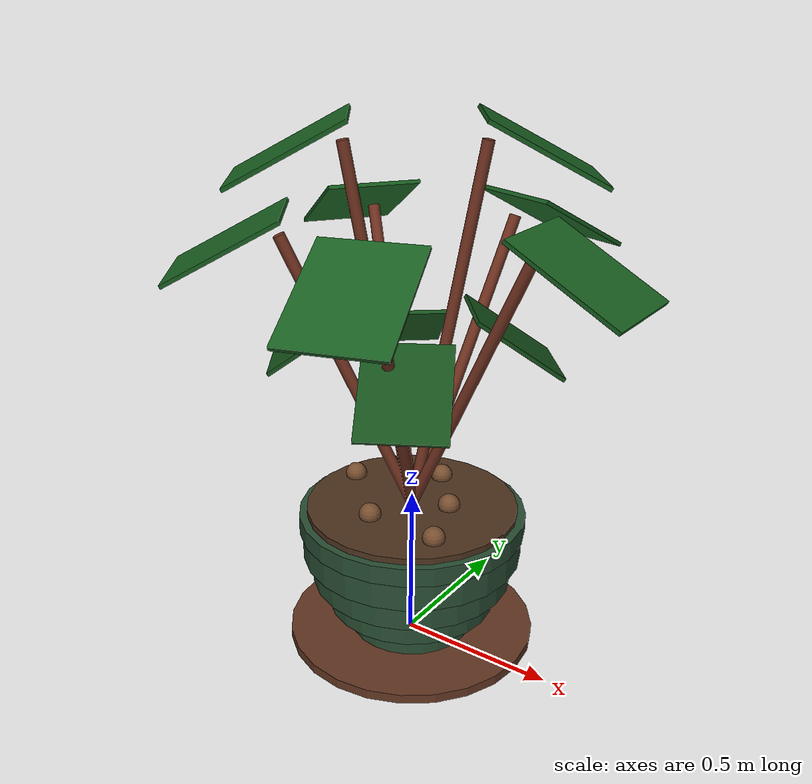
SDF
<?xml version="1.0" ?>
<sdf version="1.9">
  <model name="lobby_planter">
    <static>true</static>
    <link name="link">

      <collision name="pot_collision">
        <pose>0 0 0.24 0 0 0</pose>
        <geometry><cylinder><radius>0.36</radius><length>0.48</length></cylinder></geometry>
      </collision>
      <collision name="crown_collision">
        <pose>0 0 1.15 0 0 0</pose>
        <geometry><cylinder><radius>0.45</radius><length>0.70</length></cylinder></geometry>
      </collision>

      <visual name="saucer">
        <pose>0.000 0.000 0.015 0.000 0.000 0.000</pose>
        <geometry><cylinder><radius>0.4</radius><length>0.030</length></cylinder></geometry>
        <material><ambient>0.3 0.16 0.1 1</ambient><diffuse>0.38 0.21 0.13 1</diffuse></material>
      </visual>
      <visual name="bowl_0">
        <pose>0.000 0.000 0.075 0.000 0.000 0.000</pose>
        <geometry><cylinder><radius>0.2</radius><length>0.090</length></cylinder></geometry>
        <material><ambient>0.1 0.2 0.14 1</ambient><diffuse>0.16 0.3 0.2 1</diffuse></material>
      </visual>
      <visual name="bowl_1">
        <pose>0.000 0.000 0.165 0.000 0.000 0.000</pose>
        <geometry><cylinder><radius>0.27</radius><length>0.090</length></cylinder></geometry>
        <material><ambient>0.1 0.2 0.14 1</ambient><diffuse>0.16 0.3 0.2 1</diffuse></material>
      </visual>
      <visual name="bowl_2">
        <pose>0.000 0.000 0.255 0.000 0.000 0.000</pose>
        <geometry><cylinder><radius>0.32</radius><length>0.090</length></cylinder></geometry>
        <material><ambient>0.1 0.2 0.14 1</ambient><diffuse>0.16 0.3 0.2 1</diffuse></material>
      </visual>
      <visual name="bowl_3">
        <pose>0.000 0.000 0.345 0.000 0.000 0.000</pose>
        <geometry><cylinder><radius>0.35</radius><length>0.090</length></cylinder></geometry>
        <material><ambient>0.1 0.2 0.14 1</ambient><diffuse>0.16 0.3 0.2 1</diffuse></material>
      </visual>
      <visual name="bowl_4">
        <pose>0.000 0.000 0.420 0.000 0.000 0.000</pose>
        <geometry><cylinder><radius>0.36</radius><length>0.060</length></cylinder></geometry>
        <material><ambient>0.1 0.2 0.14 1</ambient><diffuse>0.16 0.3 0.2 1</diffuse></material>
      </visual>
      <visual name="soil">
        <pose>0.000 0.000 0.450 0.000 0.000 0.000</pose>
        <geometry><cylinder><radius>0.335</radius><length>0.040</length></cylinder></geometry>
        <material><ambient>0.2 0.13 0.08 1</ambient><diffuse>0.3 0.2 0.12 1</diffuse></material>
      </visual>
      <visual name="chip_0">
        <pose>0.113 0.041 0.480 0.000 0.000 0.000</pose>
        <geometry><sphere><radius>0.035</radius></sphere></geometry>
        <material><ambient>0.34 0.22 0.13 1</ambient><diffuse>0.46 0.3 0.18 1</diffuse></material>
      </visual>
      <visual name="chip_1">
        <pose>-0.017 0.199 0.480 0.000 0.000 0.000</pose>
        <geometry><sphere><radius>0.035</radius></sphere></geometry>
        <material><ambient>0.34 0.22 0.13 1</ambient><diffuse>0.46 0.3 0.18 1</diffuse></material>
      </visual>
      <visual name="chip_2">
        <pose>-0.256 0.045 0.480 0.000 0.000 0.000</pose>
        <geometry><sphere><radius>0.035</radius></sphere></geometry>
        <material><ambient>0.34 0.22 0.13 1</ambient><diffuse>0.46 0.3 0.18 1</diffuse></material>
      </visual>
      <visual name="chip_3">
        <pose>-0.055 -0.150 0.480 0.000 0.000 0.000</pose>
        <geometry><sphere><radius>0.035</radius></sphere></geometry>
        <material><ambient>0.34 0.22 0.13 1</ambient><diffuse>0.46 0.3 0.18 1</diffuse></material>
      </visual>
      <visual name="chip_4">
        <pose>0.184 -0.154 0.480 0.000 0.000 0.000</pose>
        <geometry><sphere><radius>0.035</radius></sphere></geometry>
        <material><ambient>0.34 0.22 0.13 1</ambient><diffuse>0.46 0.3 0.18 1</diffuse></material>
      </visual>
      <visual name="stem_0">
        <pose>0.193 0.000 0.904 0.000 0.419 0.000</pose>
        <geometry><cylinder><radius>0.018</radius><length>0.950</length></cylinder></geometry>
        <material><ambient>0.32 0.14 0.09 1</ambient><diffuse>0.45 0.2 0.13 1</diffuse></material>
      </visual>
      <visual name="stem_1">
        <pose>0.060 0.184 0.904 0.000 0.419 1.257</pose>
        <geometry><cylinder><radius>0.018</radius><length>0.950</length></cylinder></geometry>
        <material><ambient>0.32 0.14 0.09 1</ambient><diffuse>0.45 0.2 0.13 1</diffuse></material>
      </visual>
      <visual name="stem_2">
        <pose>-0.156 0.114 0.904 0.000 0.419 2.513</pose>
        <geometry><cylinder><radius>0.018</radius><length>0.950</length></cylinder></geometry>
        <material><ambient>0.32 0.14 0.09 1</ambient><diffuse>0.45 0.2 0.13 1</diffuse></material>
      </visual>
      <visual name="stem_3">
        <pose>-0.156 -0.114 0.904 0.000 0.419 3.770</pose>
        <geometry><cylinder><radius>0.018</radius><length>0.950</length></cylinder></geometry>
        <material><ambient>0.32 0.14 0.09 1</ambient><diffuse>0.45 0.2 0.13 1</diffuse></material>
      </visual>
      <visual name="stem_4">
        <pose>0.060 -0.184 0.904 0.000 0.419 5.027</pose>
        <geometry><cylinder><radius>0.018</radius><length>0.950</length></cylinder></geometry>
        <material><ambient>0.32 0.14 0.09 1</ambient><diffuse>0.45 0.2 0.13 1</diffuse></material>
      </visual>
      <visual name="stem_5">
        <pose>0.081 0.059 1.036 0.000 0.175 0.628</pose>
        <geometry><cylinder><radius>0.018</radius><length>1.150</length></cylinder></geometry>
        <material><ambient>0.32 0.14 0.09 1</ambient><diffuse>0.45 0.2 0.13 1</diffuse></material>
      </visual>
      <visual name="stem_6">
        <pose>-0.081 -0.059 1.036 0.000 0.175 3.770</pose>
        <geometry><cylinder><radius>0.018</radius><length>1.150</length></cylinder></geometry>
        <material><ambient>0.32 0.14 0.09 1</ambient><diffuse>0.45 0.2 0.13 1</diffuse></material>
      </visual>
      <visual name="leaf_0">
        <pose>0.536 0.000 1.318 0.000 0.489 0.000</pose>
        <geometry><box><size>0.38 0.3 0.012</size></box></geometry>
        <material><ambient>0.05 0.22 0.07 1</ambient><diffuse>0.09 0.36 0.12 1</diffuse></material>
      </visual>
      <visual name="leaf_1">
        <pose>0.166 0.510 1.318 0.000 0.489 1.257</pose>
        <geometry><box><size>0.38 0.3 0.012</size></box></geometry>
        <material><ambient>0.05 0.22 0.07 1</ambient><diffuse>0.09 0.36 0.12 1</diffuse></material>
      </visual>
      <visual name="leaf_2">
        <pose>-0.434 0.315 1.318 0.000 0.489 2.513</pose>
        <geometry><box><size>0.38 0.3 0.012</size></box></geometry>
        <material><ambient>0.05 0.22 0.07 1</ambient><diffuse>0.09 0.36 0.12 1</diffuse></material>
      </visual>
      <visual name="leaf_3">
        <pose>-0.434 -0.315 1.318 0.000 0.489 3.770</pose>
        <geometry><box><size>0.38 0.3 0.012</size></box></geometry>
        <material><ambient>0.05 0.22 0.07 1</ambient><diffuse>0.09 0.36 0.12 1</diffuse></material>
      </visual>
      <visual name="leaf_4">
        <pose>0.166 -0.510 1.318 0.000 0.489 5.027</pose>
        <geometry><box><size>0.38 0.3 0.012</size></box></geometry>
        <material><ambient>0.05 0.22 0.07 1</ambient><diffuse>0.09 0.36 0.12 1</diffuse></material>
      </visual>
      <visual name="leaf_5">
        <pose>0.283 0.206 1.583 0.000 0.489 0.628</pose>
        <geometry><box><size>0.38 0.3 0.012</size></box></geometry>
        <material><ambient>0.05 0.22 0.07 1</ambient><diffuse>0.09 0.36 0.12 1</diffuse></material>
      </visual>
      <visual name="leaf_6">
        <pose>-0.283 -0.206 1.583 0.000 0.489 3.770</pose>
        <geometry><box><size>0.38 0.3 0.012</size></box></geometry>
        <material><ambient>0.05 0.22 0.07 1</ambient><diffuse>0.09 0.36 0.12 1</diffuse></material>
      </visual>
      <visual name="leaf_low_0">
        <pose>0.230 0.193 1.020 0.000 0.611 0.698</pose>
        <geometry><box><size>0.32 0.26 0.012</size></box></geometry>
        <material><ambient>0.04 0.19 0.06 1</ambient><diffuse>0.08 0.31 0.1 1</diffuse></material>
      </visual>
      <visual name="leaf_low_1">
        <pose>-0.206 0.245 0.950 0.000 0.611 2.269</pose>
        <geometry><box><size>0.32 0.26 0.012</size></box></geometry>
        <material><ambient>0.04 0.19 0.06 1</ambient><diffuse>0.08 0.31 0.1 1</diffuse></material>
      </visual>
      <visual name="leaf_low_2">
        <pose>-0.238 -0.166 1.050 0.000 0.611 3.752</pose>
        <geometry><box><size>0.32 0.26 0.012</size></box></geometry>
        <material><ambient>0.04 0.19 0.06 1</ambient><diffuse>0.08 0.31 0.1 1</diffuse></material>
      </visual>
      <visual name="leaf_low_3">
        <pose>0.155 -0.268 0.980 0.000 0.611 5.236</pose>
        <geometry><box><size>0.32 0.26 0.012</size></box></geometry>
        <material><ambient>0.04 0.19 0.06 1</ambient><diffuse>0.08 0.31 0.1 1</diffuse></material>
      </visual>
    </link>
  </model>
</sdf>
